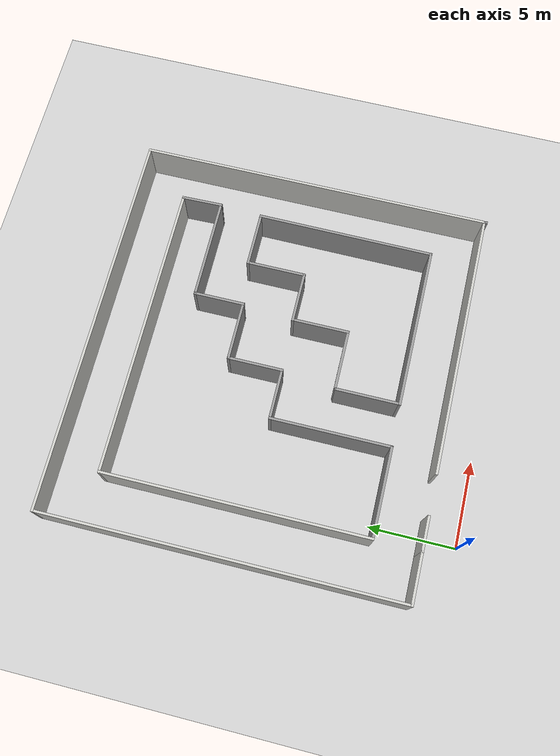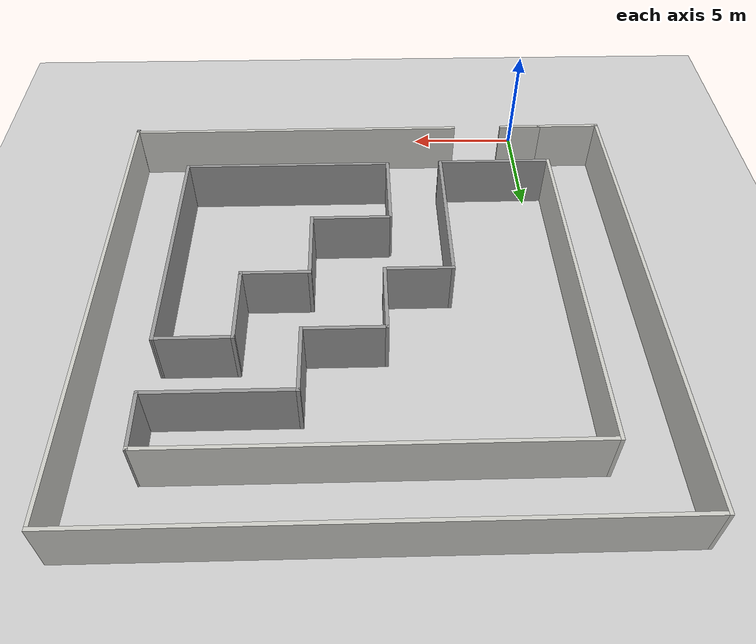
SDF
<sdf version="1.7">
 <world name="default">
  <light name="sun" type="directional">
   <pose>0 0 10 0 -0 0</pose>
   <diffuse>0.8 0.8 0.8 1</diffuse>
   <specular>0.2 0.2 0.2 1</specular>
   <attenuation>
    <range>1000</range>
    <constant>0.9</constant>
    <linear>0.01</linear>
    <quadratic>0.001</quadratic>
   </attenuation>
   <direction>-0.5 0.1 -0.9</direction>
   <spot><inner_angle>0</inner_angle><outer_angle>0</outer_angle><falloff>0</falloff></spot>
  </light>
  <model name="ground_plane">
   <static>1</static>
   <link name="link">
    <collision name="collision">
     <geometry><plane><normal>0 0 1</normal><size>100 100</size></plane></geometry>
     <surface><friction><ode><mu>100</mu><mu2>50</mu2></ode></friction></surface>
    </collision>
    <visual name="visual">
     <cast_shadows>0</cast_shadows>
     <geometry><plane><normal>0 0 1</normal><size>100 100</size></plane></geometry>
     <material>
      <script><uri>file://media/materials/scripts/gazebo.material</uri><name>Gazebo/Grey</name></script>
     </material>
    </visual>
   </link>
  </model>
  <gravity>0 0 -9.8</gravity>
  <magnetic_field>6e-06 2.3e-05 -4.2e-05</magnetic_field>
  <atmosphere type="adiabatic"/>
  <physics type="ode">
   <max_step_size>0.001</max_step_size>
   <real_time_factor>1</real_time_factor>
   <real_time_update_rate>1000</real_time_update_rate>
  </physics>
  <scene><ambient>0.4 0.4 0.4 1</ambient><background>0.7 0.7 0.7 1</background><shadows>1</shadows></scene>
  <spherical_coordinates>
   <surface_model>EARTH_WGS84</surface_model>
   <latitude_deg>0</latitude_deg>
   <longitude_deg>0</longitude_deg>
   <elevation>0</elevation>
   <heading_deg>0</heading_deg>
  </spherical_coordinates>
  <model name="test1">
   <pose>7.49911 12.3663 0 0 0 -1.56729</pose>
   <link name="Wall_11">
    <collision name="Wall_11_Collision">
     <geometry><box><size>15.5 0.15 2.5</size></box></geometry>
     <pose>0 0 1.25 0 -0 0</pose>
    </collision>
    <visual name="Wall_11_Visual">
     <pose>0 0 1.25 0 -0 0</pose>
     <geometry><box><size>15.5 0.15 2.5</size></box></geometry>
     <material>
      <script><uri>file://media/materials/scripts/gazebo.material</uri><name>Gazebo/CeilingTiled</name></script>
      <ambient>1 1 1 1</ambient>
     </material>
     <meta><layer>0</layer></meta>
    </visual>
    <pose>10.2288 3.47097 0 0 -0 1.5708</pose>
   </link>
   <link name="Wall_13">
    <collision name="Wall_13_Collision">
     <geometry><box><size>15.25 0.15 2.5</size></box></geometry>
     <pose>0 0 1.25 0 -0 0</pose>
    </collision>
    <visual name="Wall_13_Visual">
     <pose>0 0 1.25 0 -0 0</pose>
     <geometry><box><size>15.25 0.15 2.5</size></box></geometry>
     <material>
      <script><uri>file://media/materials/scripts/gazebo.material</uri><name>Gazebo/CeilingTiled</name></script>
      <ambient>1 1 1 1</ambient>
     </material>
     <meta><layer>0</layer></meta>
    </visual>
    <pose>0.040001 -8.45 0 0 -0 3.14159</pose>
   </link>
   <link name="Wall_14">
    <collision name="Wall_14_Collision">
     <geometry><box><size>17.25 0.15 2.5</size></box></geometry>
     <pose>0 0 1.25 0 -0 0</pose>
    </collision>
    <visual name="Wall_14_Visual">
     <pose>0 0 1.25 0 -0 0</pose>
     <geometry><box><size>17.25 0.15 2.5</size></box></geometry>
     <material>
      <script><uri>file://media/materials/scripts/gazebo.material</uri><name>Gazebo/CeilingTiled</name></script>
      <ambient>1 1 1 1</ambient>
     </material>
     <meta><layer>0</layer></meta>
    </visual>
    <pose>-7.51 0.100001 0 0 -0 1.5708</pose>
   </link>
   <link name="Wall_17">
    <collision name="Wall_17_Collision">
     <geometry><box><size>3 0.15 2.5</size></box></geometry>
     <pose>0 0 1.25 0 -0 0</pose>
    </collision>
    <visual name="Wall_17_Visual">
     <pose>0 0 1.25 0 -0 0</pose>
     <geometry><box><size>3 0.15 2.5</size></box></geometry>
     <material>
      <script><uri>file://media/materials/scripts/gazebo.material</uri><name>Gazebo/CeilingTiled</name></script>
      <ambient>1 1 1 1</ambient>
     </material>
     <meta><layer>0</layer></meta>
    </visual>
    <pose>10.25 -9.875 0 0 -0 -1.5708</pose>
   </link>
   <link name="Wall_18">
    <collision name="Wall_18_Collision">
     <geometry><box><size>20.75 0.15 2.5</size></box></geometry>
     <pose>0 0 1.25 0 -0 0</pose>
    </collision>
    <visual name="Wall_18_Visual">
     <pose>0 0 1.25 0 -0 0</pose>
     <geometry><box><size>20.75 0.15 2.5</size></box></geometry>
     <material>
      <script><uri>file://media/materials/scripts/gazebo.material</uri><name>Gazebo/CeilingTiled</name></script>
      <ambient>1 1 1 1</ambient>
     </material>
     <meta><layer>0</layer></meta>
    </visual>
    <pose>-0.05 -11.3 0 0 -0 3.14159</pose>
   </link>
   <link name="Wall_19">
    <collision name="Wall_19_Collision">
     <geometry><box><size>22.75 0.15 2.5</size></box></geometry>
     <pose>0 0 1.25 0 -0 0</pose>
    </collision>
    <visual name="Wall_19_Visual">
     <pose>0 0 1.25 0 -0 0</pose>
     <geometry><box><size>22.75 0.15 2.5</size></box></geometry>
     <material>
      <script><uri>file://media/materials/scripts/gazebo.material</uri><name>Gazebo/CeilingTiled</name></script>
      <ambient>1 1 1 1</ambient>
     </material>
     <meta><layer>0</layer></meta>
    </visual>
    <pose>-10.35 0 0 0 -0 1.5708</pose>
   </link>
   <link name="Wall_20">
    <collision name="Wall_20_Collision">
     <geometry><box><size>20.6399 0.15 2.5</size></box></geometry>
     <pose>0 0 1.25 0 -0 0</pose>
    </collision>
    <visual name="Wall_20_Visual">
     <pose>0 0 1.25 0 -0 0</pose>
     <geometry><box><size>20.6399 0.15 2.5</size></box></geometry>
     <material>
      <script><uri>file://media/materials/scripts/gazebo.material</uri><name>Gazebo/CeilingTiled</name></script>
      <ambient>1 1 1 1</ambient>
     </material>
     <meta><layer>0</layer></meta>
    </visual>
    <pose>-0.105039 11.3 0 0 -0 0</pose>
   </link>
   <link name="Wall_22">
    <collision name="Wall_22_Collision">
     <geometry><box><size>0.15 0.15 2.5</size></box></geometry>
     <pose>0 0 1.25 0 -0 0</pose>
    </collision>
    <visual name="Wall_22_Visual">
     <pose>0 0 1.25 0 -0 0</pose>
     <geometry><box><size>0.15 0.15 2.5</size></box></geometry>
     <material>
      <script><uri>file://media/materials/scripts/gazebo.material</uri><name>Gazebo/Grey</name></script>
      <ambient>1 1 1 1</ambient>
     </material>
     <meta><layer>0</layer></meta>
    </visual>
    <pose>10.2365 11.2741 0 0 -0 0</pose>
   </link>
   <link name="Wall_25">
    <collision name="Wall_25_Collision">
     <geometry><box><size>0.15 0.15 2.5</size></box></geometry>
     <pose>0 0 1.25 0 -0 0</pose>
    </collision>
    <visual name="Wall_25_Visual">
     <pose>0 0 1.25 0 -0 0</pose>
     <geometry><box><size>0.15 0.15 2.5</size></box></geometry>
     <material>
      <script><uri>file://media/materials/scripts/gazebo.material</uri><name>Gazebo/Grey</name></script>
      <ambient>1 1 1 1</ambient>
     </material>
     <meta><layer>0</layer></meta>
    </visual>
    <pose>10.35 11.3 0 0 -0 0</pose>
   </link>
   <link name="Wall_29">
    <collision name="Wall_29_Collision">
     <geometry><box><size>3.75 0.15 2.5</size></box></geometry>
     <pose>0 0 1.25 0 -0 0</pose>
    </collision>
    <visual name="Wall_29_Visual">
     <pose>0 0 1.25 0 -0 0</pose>
     <geometry><box><size>3.75 0.15 2.5</size></box></geometry>
     <material>
      <script><uri>file://media/materials/scripts/gazebo.material</uri><name>Gazebo/Grey</name></script>
      <ambient>1 1 1 1</ambient>
     </material>
     <meta><layer>0</layer></meta>
    </visual>
    <pose>5.73683 -0.855208 0 0 -0 0</pose>
   </link>
   <link name="Wall_31">
    <collision name="Wall_31_Collision">
     <geometry><box><size>3.5 0.15 2.5</size></box></geometry>
     <pose>0 0 1.25 0 -0 0</pose>
    </collision>
    <visual name="Wall_31_Visual">
     <pose>0 0 1.25 0 -0 0</pose>
     <geometry><box><size>3.5 0.15 2.5</size></box></geometry>
     <material>
      <script><uri>file://media/materials/scripts/gazebo.material</uri><name>Gazebo/Grey</name></script>
      <ambient>1 1 1 1</ambient>
     </material>
     <meta><layer>0</layer></meta>
    </visual>
    <pose>3.86274 0.911582 0 0 -0 1.5708</pose>
   </link>
   <link name="Wall_32">
    <collision name="Wall_32_Collision">
     <geometry><box><size>3.38175 0.15 2.5</size></box></geometry>
     <pose>0 0 1.25 0 -0 0</pose>
    </collision>
    <visual name="Wall_32_Visual">
     <pose>0 0 1.25 0 -0 0</pose>
     <geometry><box><size>3.38175 0.15 2.5</size></box></geometry>
     <material>
      <script><uri>file://media/materials/scripts/gazebo.material</uri><name>Gazebo/Grey</name></script>
      <ambient>1 1 1 1</ambient>
     </material>
     <meta><layer>0</layer></meta>
    </visual>
    <pose>2.24692 2.59973 0 0 -0 3.14159</pose>
   </link>
   <link name="Wall_33">
    <collision name="Wall_33_Collision">
     <geometry><box><size>3 0.15 2.5</size></box></geometry>
     <pose>0 0 1.25 0 -0 0</pose>
    </collision>
    <visual name="Wall_33_Visual">
     <pose>0 0 1.25 0 -0 0</pose>
     <geometry><box><size>3 0.15 2.5</size></box></geometry>
     <material>
      <script><uri>file://media/materials/scripts/gazebo.material</uri><name>Gazebo/Grey</name></script>
      <ambient>1 1 1 1</ambient>
     </material>
     <meta><layer>0</layer></meta>
    </visual>
    <pose>0.631094 4.02473 0 0 -0 1.5708</pose>
   </link>
   <link name="Wall_34">
    <collision name="Wall_34_Collision">
     <geometry><box><size>3.5 0.15 2.5</size></box></geometry>
     <pose>0 0 1.25 0 -0 0</pose>
    </collision>
    <visual name="Wall_34_Visual">
     <pose>0 0 1.25 0 -0 0</pose>
     <geometry><box><size>3.5 0.15 2.5</size></box></geometry>
     <material>
      <script><uri>file://media/materials/scripts/gazebo.material</uri><name>Gazebo/Grey</name></script>
      <ambient>1 1 1 1</ambient>
     </material>
     <meta><layer>0</layer></meta>
    </visual>
    <pose>-1.04391 5.44973 0 0 -0 3.14159</pose>
   </link>
   <link name="Wall_35">
    <collision name="Wall_35_Collision">
     <geometry><box><size>3.25 0.15 2.5</size></box></geometry>
     <pose>0 0 1.25 0 -0 0</pose>
    </collision>
    <visual name="Wall_35_Visual">
     <pose>0 0 1.25 0 -0 0</pose>
     <geometry><box><size>3.25 0.15 2.5</size></box></geometry>
     <material>
      <script><uri>file://media/materials/scripts/gazebo.material</uri><name>Gazebo/Grey</name></script>
      <ambient>1 1 1 1</ambient>
     </material>
     <meta><layer>0</layer></meta>
    </visual>
    <pose>-2.71891 6.99973 0 0 -0 1.5708</pose>
   </link>
   <link name="Wall_37">
    <collision name="Wall_37_Collision">
     <geometry><box><size>9.5 0.15 2.5</size></box></geometry>
     <pose>0 0 1.25 0 -0 0</pose>
    </collision>
    <visual name="Wall_37_Visual">
     <pose>0 0 1.25 0 -0 0</pose>
     <geometry><box><size>9.5 0.15 2.5</size></box></geometry>
     <material>
      <script><uri>file://media/materials/scripts/gazebo.material</uri><name>Gazebo/Grey</name></script>
      <ambient>1 1 1 1</ambient>
     </material>
     <meta><layer>0</layer></meta>
    </visual>
    <pose>7.53683 3.81979 0 0 -0 1.5708</pose>
   </link>
   <link name="Wall_39">
    <collision name="Wall_39_Collision">
     <geometry><box><size>5.25 0.15 2.5</size></box></geometry>
     <pose>0 0 1.25 0 -0 0</pose>
    </collision>
    <visual name="Wall_39_Visual">
     <pose>0 0 1.25 0 -0 0</pose>
     <geometry><box><size>5.25 0.15 2.5</size></box></geometry>
     <material>
      <script><uri>file://media/materials/scripts/gazebo.material</uri><name>Gazebo/Grey</name></script>
      <ambient>1 1 1 1</ambient>
     </material>
     <meta><layer>0</layer></meta>
    </visual>
    <pose>7.59 -5.9 0 0 -0 1.5708</pose>
   </link>
   <link name="Wall_4">
    <collision name="Wall_4_Collision">
     <geometry><box><size>2 0.15 2.5</size></box></geometry>
     <pose>0 0 1.25 0 -0 0</pose>
    </collision>
    <visual name="Wall_4_Visual">
     <pose>0 0 1.25 0 -0 0</pose>
     <geometry><box><size>2 0.15 2.5</size></box></geometry>
     <material>
      <script><uri>file://media/materials/scripts/gazebo.material</uri><name>Gazebo/CeilingTiled</name></script>
      <ambient>1 1 1 1</ambient>
     </material>
     <meta><layer>0</layer></meta>
    </visual>
    <pose>10.25 -7.525 0 0 -0 -1.5708</pose>
   </link>
   <link name="Wall_40">
    <collision name="Wall_40_Collision">
     <geometry><box><size>7 0.15 2.5</size></box></geometry>
     <pose>0 0 1.25 0 -0 0</pose>
    </collision>
    <visual name="Wall_40_Visual">
     <pose>0 0 1.25 0 -0 0</pose>
     <geometry><box><size>7 0.15 2.5</size></box></geometry>
     <material>
      <script><uri>file://media/materials/scripts/gazebo.material</uri><name>Gazebo/Grey</name></script>
      <ambient>1 1 1 1</ambient>
     </material>
     <meta><layer>0</layer></meta>
    </visual>
    <pose>4.165 -3.35 0 0 -0 3.14159</pose>
   </link>
   <link name="Wall_41">
    <collision name="Wall_41_Collision">
     <geometry><box><size>3 0.15 2.5</size></box></geometry>
     <pose>0 0 1.25 0 -0 0</pose>
    </collision>
    <visual name="Wall_41_Visual">
     <pose>0 0 1.25 0 -0 0</pose>
     <geometry><box><size>3 0.15 2.5</size></box></geometry>
     <material>
      <script><uri>file://media/materials/scripts/gazebo.material</uri><name>Gazebo/Grey</name></script>
      <ambient>1 1 1 1</ambient>
     </material>
     <meta><layer>0</layer></meta>
    </visual>
    <pose>0.74 -1.925 0 0 -0 1.5708</pose>
   </link>
   <link name="Wall_42">
    <collision name="Wall_42_Collision">
     <geometry><box><size>3.25 0.15 2.5</size></box></geometry>
     <pose>0 0 1.25 0 -0 0</pose>
    </collision>
    <visual name="Wall_42_Visual">
     <pose>0 0 1.25 0 -0 0</pose>
     <geometry><box><size>3.25 0.15 2.5</size></box></geometry>
     <material>
      <script><uri>file://media/materials/scripts/gazebo.material</uri><name>Gazebo/Grey</name></script>
      <ambient>1 1 1 1</ambient>
     </material>
     <meta><layer>0</layer></meta>
    </visual>
    <pose>-0.81 -0.499999 0 0 -0 3.14159</pose>
   </link>
   <link name="Wall_43">
    <collision name="Wall_43_Collision">
     <geometry><box><size>3.5 0.15 2.5</size></box></geometry>
     <pose>0 0 1.25 0 -0 0</pose>
    </collision>
    <visual name="Wall_43_Visual">
     <pose>0 0 1.25 0 -0 0</pose>
     <geometry><box><size>3.5 0.15 2.5</size></box></geometry>
     <material>
      <script><uri>file://media/materials/scripts/gazebo.material</uri><name>Gazebo/Grey</name></script>
      <ambient>1 1 1 1</ambient>
     </material>
     <meta><layer>0</layer></meta>
    </visual>
    <pose>-2.36 1.175 0 0 -0 1.5708</pose>
   </link>
   <link name="Wall_44">
    <collision name="Wall_44_Collision">
     <geometry><box><size>3 0.15 2.5</size></box></geometry>
     <pose>0 0 1.25 0 -0 0</pose>
    </collision>
    <visual name="Wall_44_Visual">
     <pose>0 0 1.25 0 -0 0</pose>
     <geometry><box><size>3 0.15 2.5</size></box></geometry>
     <material>
      <script><uri>file://media/materials/scripts/gazebo.material</uri><name>Gazebo/Grey</name></script>
      <ambient>1 1 1 1</ambient>
     </material>
     <meta><layer>0</layer></meta>
    </visual>
    <pose>-3.785 2.85 0 0 -0 3.14159</pose>
   </link>
   <link name="Wall_45">
    <collision name="Wall_45_Collision">
     <geometry><box><size>6 0.15 2.5</size></box></geometry>
     <pose>0 0 1.25 0 -0 0</pose>
    </collision>
    <visual name="Wall_45_Visual">
     <pose>0 0 1.25 0 -0 0</pose>
     <geometry><box><size>6 0.15 2.5</size></box></geometry>
     <material>
      <script><uri>file://media/materials/scripts/gazebo.material</uri><name>Gazebo/Grey</name></script>
      <ambient>1 1 1 1</ambient>
     </material>
     <meta><layer>0</layer></meta>
    </visual>
    <pose>-5.21 5.775 0 0 -0 1.5708</pose>
   </link>
   <link name="Wall_47">
    <collision name="Wall_47_Collision">
     <geometry><box><size>2.45054 0.15 2.5</size></box></geometry>
     <pose>0 0 1.25 0 -0 0</pose>
    </collision>
    <visual name="Wall_47_Visual">
     <pose>0 0 1.25 0 -0 0</pose>
     <geometry><box><size>2.45054 0.15 2.5</size></box></geometry>
     <material>
      <script><uri>file://media/materials/scripts/gazebo.material</uri><name>Gazebo/Grey</name></script>
      <ambient>1 1 1 1</ambient>
     </material>
     <meta><layer>0</layer></meta>
    </visual>
    <pose>-6.36 8.675 0 0 -0 0.021736</pose>
   </link>
   <link name="Wall_49">
    <collision name="Wall_49_Collision">
     <geometry><box><size>10.4059 0.15 2.5</size></box></geometry>
     <pose>0 0 1.25 0 -0 0</pose>
    </collision>
    <visual name="Wall_49_Visual">
     <pose>0 0 1.25 0 -0 0</pose>
     <geometry><box><size>10.4059 0.15 2.5</size></box></geometry>
     <material>
      <script><uri>file://media/materials/scripts/gazebo.material</uri><name>Gazebo/Grey</name></script>
      <ambient>1 1 1 1</ambient>
     </material>
     <meta><layer>0</layer></meta>
    </visual>
    <pose>2.40896 8.52226 0 0 -0 3.13624</pose>
   </link>
   <static>1</static>
  </model>
 </world>
</sdf>
